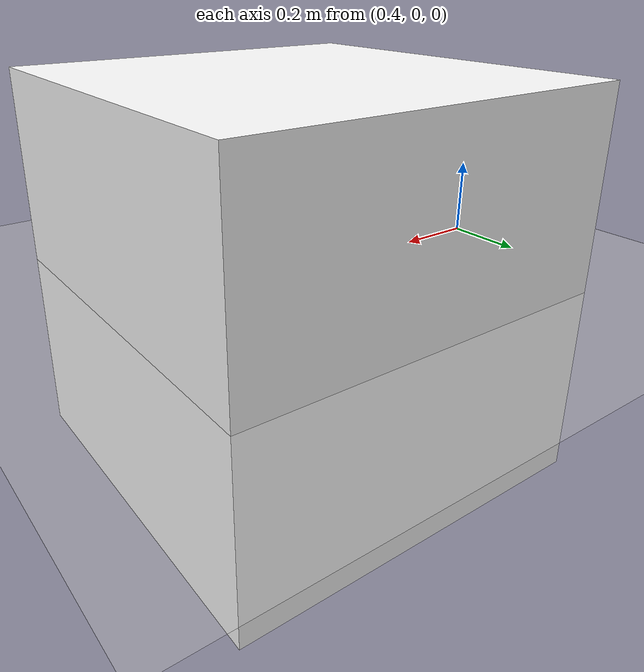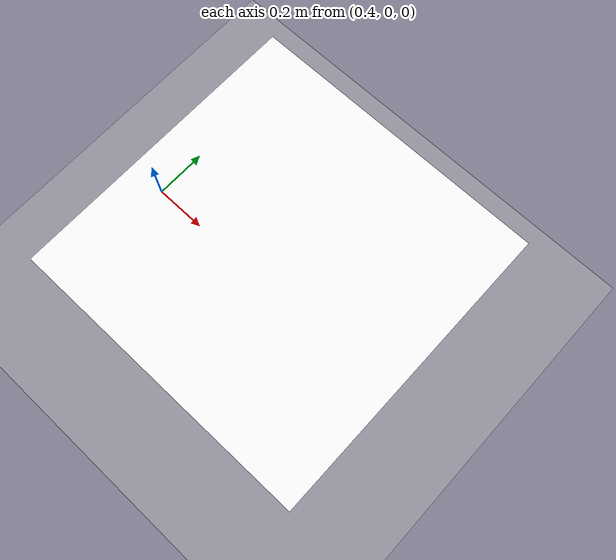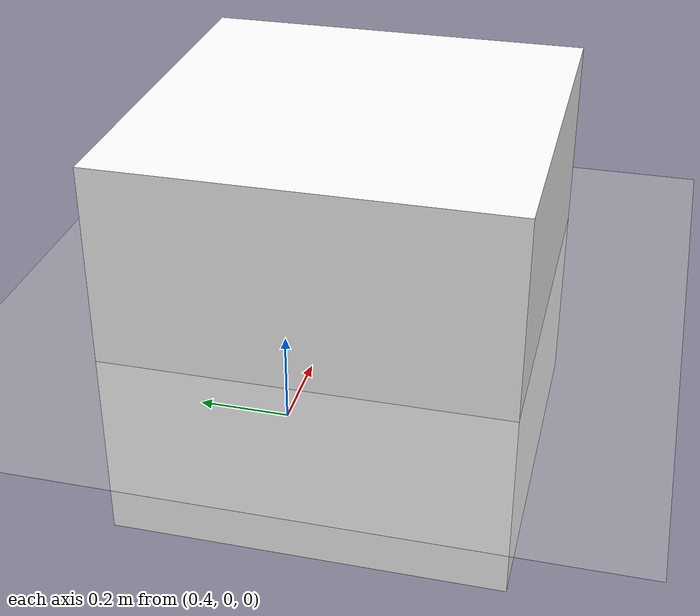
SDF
<?xml version="1.0"?>
<sdf version="1.4">
  <world name="default">
    <include>
      <uri>model://ground_plane</uri>
    </include>
    <include>
      <uri>model://sun</uri>
    </include>
    <include>
      <pose> 1 0 0.001 0 0 0 </pose>
      <uri>model://aruco_visual_marker_7</uri>
    </include>
  </world>
</sdf>

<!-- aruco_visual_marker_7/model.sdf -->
<sdf version='1.5'>
  <model name='aruco_visual_marker_7'>

    <link name='marker'>
      <pose frame=''>0 0 0 0 0 0</pose>
      <visual name='visual'>
        <geometry>
          <box>
            <size>1 1 1</size>
          </box>
        </geometry>
        <material>
          <script>
            <uri>model://aruco_visual_marker_7/materials/scripts</uri>
            <uri>model://aruco_visual_marker_7/materials/textures</uri>
            <name>ArucoVisualMarker7/Marker</name>
          </script>
          <ambient>1 1 1 1</ambient>
          <diffuse>1 1 1 1</diffuse>
          <specular>0 0 0 1</specular>
          <emissive>1 1 1 0</emissive>
          <shader type='vertex'>
            <normal_map>__default__</normal_map>
          </shader>
        </material>
        <pose frame=''>0 0 0 0 -0 0</pose>
        <cast_shadows>1</cast_shadows>
        <transparency>0</transparency>
      </visual>
      <collision name='collision'>
        <laser_retro>0</laser_retro>
        <max_contacts>10</max_contacts>
        <pose frame=''>0 0 0 0 -0 0</pose>
        <geometry>
          <box>
            <size>1 1 1</size>
          </box>
        </geometry>
      </collision>
    </link>

    <static>1</static>
    <allow_auto_disable>1</allow_auto_disable>

  </model>
</sdf>
